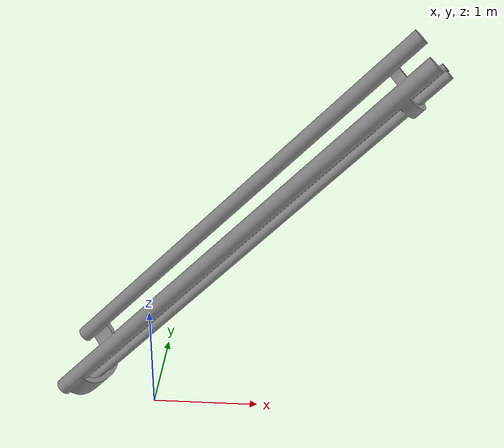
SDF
<?xml version="1.0" encoding="UTF-8"?>
<sdf version='1.9'>
  <model name='catapult'>
    <static>true</static>
    <link name="link">
      <collision name="catapult/vis">
        <pose>-0.5 0 0.21 0 -0.785 0</pose>
        <geometry>
          <mesh>
            <scale>0.001 0.001 0.001</scale>
            <uri>model://catapult/meshes/catapult.stl</uri>
          </mesh>
        </geometry>
        <surface>
          <friction>
            <ode>
              <mu>0.0</mu>
              <mu2>0.0</mu2>
            </ode>
          </friction>
        </surface>
      </collision>
      <visual name="catapult/col">
        <pose>-0.5 0 0.21 0 -0.785 0</pose>
        <geometry>
          <mesh>
            <scale>0.001 0.001 0.001</scale>
            <uri>model://catapult/meshes/catapult2.stl</uri>
          </mesh>
        </geometry>
        <material>
          <ambient>0.575 0.575 0.575 1.0</ambient>
          <diffuse>0.575 0.575 0.575 1.0</diffuse>
          <specular>0.575 0.575 0.575 1.0</specular>
        </material>
      </visual>

      <pose>0 0 0 0 -0 0</pose>
      <inertial>
        <pose>0 0 0 0 -0 0</pose>
        <mass>1</mass>
        <inertia>
          <ixx>1</ixx>
          <ixy>0</ixy>
          <ixz>0</ixz>
          <iyy>1</iyy>
          <iyz>0</iyz>
          <izz>1</izz>
        </inertia>
      </inertial>
      <enable_wind>false</enable_wind>
    </link>
    <pose>0 0 0 0 -0 0</pose>
    <self_collide>false</self_collide>
  </model>
</sdf>
